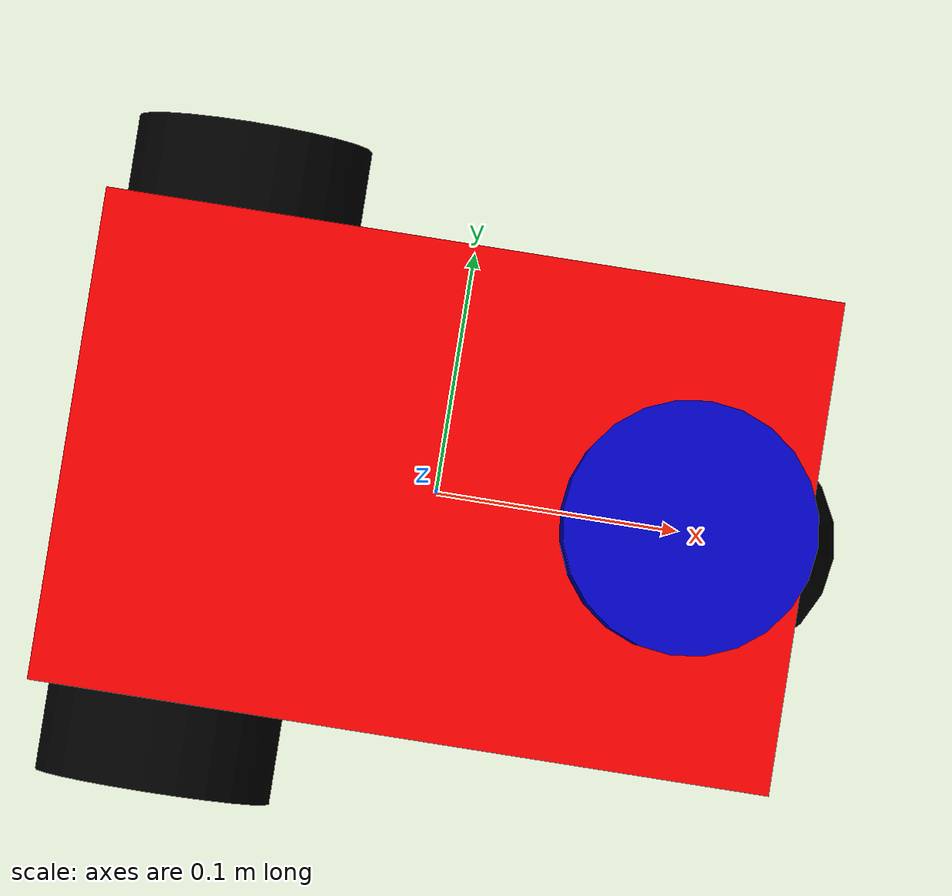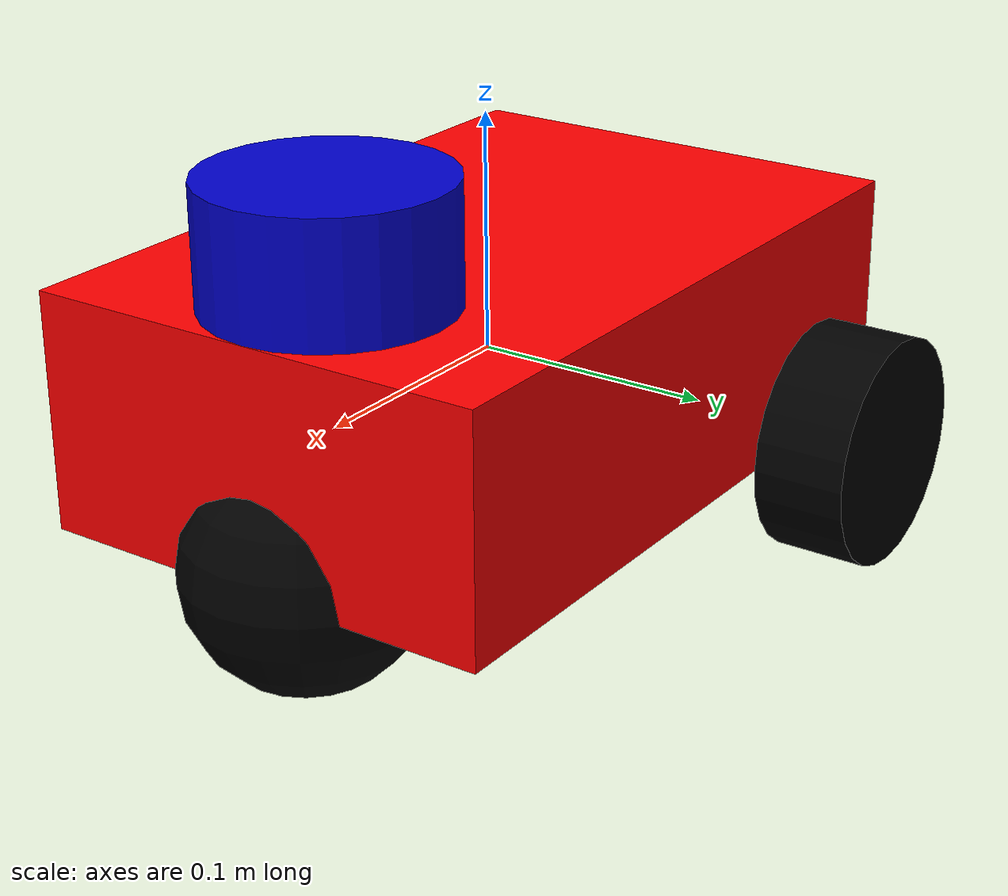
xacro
<?xml version="1.0"?>
<robot xmlns:xacro="http://www.ros.org/wiki/xacro" name="marsbot">

    <material name="blue"><color rgba="0 0 0.8 1"/></material>
    <material name="black"><color rgba="0 0 0 1"/></material>
    <material name="red"><color rgba="1 0 0 1"/></material>

    <link name="base_link">
        <visual>
            <geometry><box size="0.3 0.2 0.1"/></geometry>
            <material name="red"/>
        </visual>
        <collision>
            <geometry><box size="0.3 0.2 0.1"/></geometry>
        </collision>
        <inertial>
            <mass value="5.0"/>
            <origin xyz="0 0 0" rpy="0 0 0"/>
            <inertia ixx="0.05" ixy="0" ixz="0" iyy="0.05" iyz="0" izz="0.05"/>
        </inertial>
    </link>

    <link name="left_wheel">
        <visual>
            <geometry><cylinder length="0.04" radius="0.05"/></geometry>
            <material name="black"/>
        </visual>
        <collision>
            <geometry><cylinder length="0.04" radius="0.05"/></geometry>
        </collision>
        <inertial>
            <mass value="0.5"/>
            <inertia ixx="0.001" ixy="0" ixz="0" iyy="0.001" iyz="0" izz="0.001"/>
        </inertial>
    </link>

    <gazebo reference="left_wheel">
        <mu1>200.0</mu1>
        <mu2>200.0</mu2>
        <kp>1000000.0</kp>
        <kd>10.0</kd>
        <material>Gazebo/Black</material>
    </gazebo>

    <joint name="left_wheel_joint" type="continuous">
        <parent link="base_link"/>
        <child link="left_wheel"/>
        <origin xyz="-0.1 0.12 -0.05" rpy="1.5707 0 0"/>
        <axis xyz="0 0 -1"/>
    </joint>

    <link name="right_wheel">
        <visual>
            <geometry><cylinder length="0.04" radius="0.05"/></geometry>
            <material name="black"/>
        </visual>
        <collision>
            <geometry><cylinder length="0.04" radius="0.05"/></geometry>
        </collision>
        <inertial>
            <mass value="0.5"/>
            <inertia ixx="0.001" ixy="0" ixz="0" iyy="0.001" iyz="0" izz="0.001"/>
        </inertial>
    </link>

    <gazebo reference="right_wheel">
        <mu1>200.0</mu1>
        <mu2>200.0</mu2>
        <kp>1000000.0</kp>
        <kd>10.0</kd>
        <material>Gazebo/Black</material>
    </gazebo>

    <joint name="right_wheel_joint" type="continuous">
        <parent link="base_link"/>
        <child link="right_wheel"/>
        <origin xyz="-0.1 -0.12 -0.05" rpy="1.5707 0 0"/>
        <axis xyz="0 0 -1"/>
    </joint>

    <link name="caster_wheel">
        <visual>
            <geometry><sphere radius="0.05"/></geometry>
            <material name="black"/>
        </visual>
        <collision>
            <geometry><sphere radius="0.05"/></geometry>
        </collision>
        <inertial>
            <mass value="0.1"/>
            <inertia ixx="0.0001" ixy="0" ixz="0" iyy="0.0001" iyz="0" izz="0.0001"/>
        </inertial>
    </link>

    <joint name="caster_joint" type="fixed">
        <parent link="base_link"/>
        <child link="caster_wheel"/> <origin xyz="0.12 0 -0.05" rpy="0 0 0"/>
    </joint>

    <gazebo reference="caster_wheel">
        <mu1>0.001</mu1>
        <mu2>0.001</mu2>
        <material>Gazebo/Black</material>
    </gazebo>

    <link name="lidar_link">
        <visual>
            <geometry><cylinder length="0.05" radius="0.05"/></geometry>
            <material name="blue"/>
        </visual>
        <collision>
            <geometry><cylinder length="0.05" radius="0.05"/></geometry>
        </collision>
        <inertial>
            <mass value="0.1"/>
            <inertia ixx="0.0001" ixy="0" ixz="0" iyy="0.0001" iyz="0" izz="0.0001"/>
        </inertial>
    </link>

    <joint name="lidar_joint" type="fixed">
        <parent link="base_link"/>
        <child link="lidar_link"/>
        <origin xyz="0.1 0 0.075" rpy="0 0 3.14159"/>
    </joint>

    <gazebo>
        <plugin name="differential_drive_controller" filename="libgazebo_ros_diff_drive.so">
            <updateRate>50.0</updateRate>
            <leftJoint>left_wheel_joint</leftJoint>
            <rightJoint>right_wheel_joint</rightJoint>
            <wheelSeparation>0.24</wheelSeparation>
            <wheelDiameter>0.1</wheelDiameter>
            <wheelTorque>500</wheelTorque>
            <wheelAcceleration>2.0</wheelAcceleration>
            <commandTopic>cmd_vel</commandTopic>
            <odometryTopic>odom</odometryTopic>
            <robotBaseFrame>base_link</robotBaseFrame>
            <publishWheelTF>false</publishWheelTF>
            <publishWheelJointState>true</publishWheelJointState>
            <publishTf>true</publishTf>
            <odometrySource>encoder</odometrySource>
        </plugin>
    </gazebo>

    <gazebo reference="lidar_link">
        <sensor type="ray" name="laser">
            <pose>0 0 0 0 0 0</pose>
            <visualize>true</visualize>
            <update_rate>40</update_rate>
            <ray>
                <scan>
                    <horizontal>
                        <samples>720</samples>
                        <resolution>1</resolution>
                        <min_angle>-3.14159</min_angle>
                        <max_angle>3.14159</max_angle>
                    </horizontal>
                </scan>
                <range>
                    <min>0.15</min>
                    <max>30.0</max>
                    <resolution>0.01</resolution>
                </range>
            </ray>
            <plugin name="gazebo_ros_head_hokuyo_controller" filename="libgazebo_ros_laser.so">
                <topicName>/scan</topicName>
                <frameName>lidar_link</frameName>
            </plugin>
        </sensor>
    </gazebo>

</robot>
